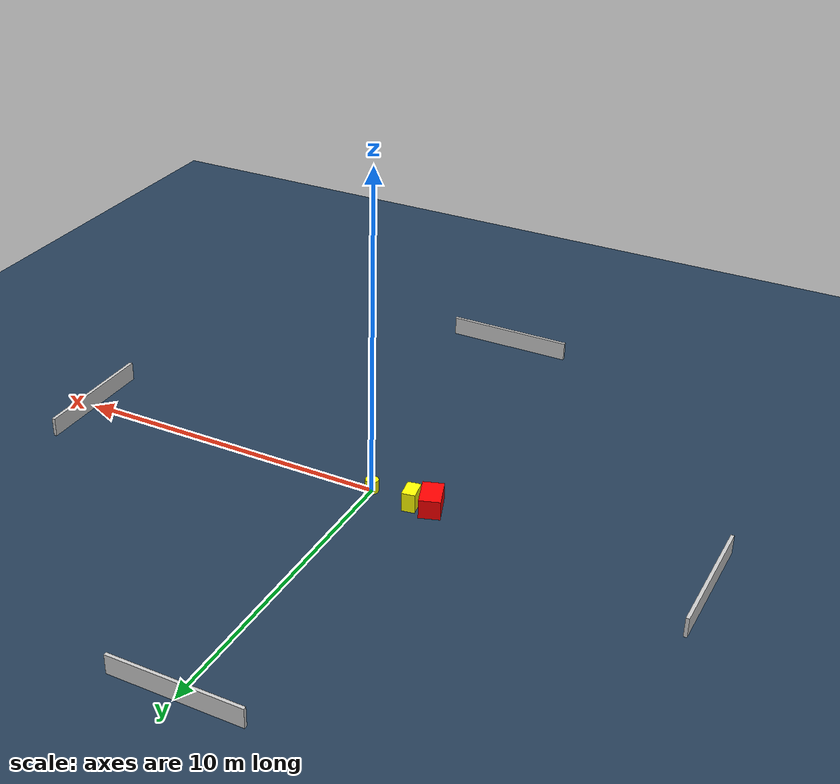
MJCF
<?xml version="1.0" ?>
<mujoco model="generated_environment">
  <option timestep="0.01" integrator="RK4" cone="elliptic"/>
  <default>
    <geom density="1"/>
  </default>
  <asset>
    <texture builtin="gradient" height="3072" name="skybox" rgb1="0.3 0.5 0.7" rgb2="0 0 0" type="skybox" width="512"/>
    <texture builtin="checker" height="300" name="groundplane" rgb1="0.2 0.3 0.4" rgb2="0.1 0.2 0.3" type="2d" width="300"/>
    <material name="groundplane" reflectance="0.2" texrepeat="5 5" texture="groundplane"/>
  </asset>
  <worldbody>
    <light dir="0 0 -1" directional="true" pos="0 0 1.5"/>
    <geom condim="3" friction="0.5 0.005 0.001" material="groundplane" name="floor" pos="0 0 0" size="0 0 0.05" type="plane"/>
    <body name="walls">
      <geom name="wall_1" condim="4" pos="-10.0 0.0 0.3" rgba="0.800000011920929 0.800000011920929 0.800000011920929 1.0" size="0.05 2.0 0.3" type="box"/>
      <geom name="wall_2" condim="4" pos="10.0 0.0 0.3" rgba="0.800000011920929 0.800000011920929 0.800000011920929 1.0" size="0.05 2.0 0.3" type="box"/>
      <geom name="wall_3" condim="4" pos="0.0 -10.0 0.3" rgba="0.800000011920929 0.800000011920929 0.800000011920929 1.0" size="2.0 0.05 0.3" type="box"/>
      <geom name="wall_4" condim="4" pos="0.0 10.0 0.3" rgba="0.800000011920929 0.800000011920929 0.800000011920929 1.0" size="2.0 0.05 0.3" type="box"/>
    </body>
    <body name="robot">
      <joint name="joint_x" type="slide" pos="0 0 0" axis="1 0 0"/>
      <joint name="joint_y" type="slide" pos="0 0 0" axis="0 1 0"/>
      <geom name="robot" type="cylinder" pos="0.0 0.0 0.2" size="0.2 0.2 0.0" mass="5.0" friction="1.0 0.005 0.0001" condim="4" rgba="1.0 1.0 0.0 1.0"/>
    </body>
    <body name="obstacle_1_movable">
      <geom name="obstacle_1_movable" condim="4" pos="-1.3493556909132027 0.1520142449445269 0.3" euler="0 0 189.71182546178844" friction="0.0 0.005 0.001" rgba="1.0 1.0 0.0 1.0" size="0.20371708301012156 0.31579175080033406 0.3" type="box" mass="0.1"/>
      <joint type="free"/>
    </body>
    <body name="obstacle_2_static">
      <geom name="obstacle_2_static" condim="4" pos="-1.9261271496450603 0.026922407456667345 0.3" euler="0 0 19.04045332306528" friction="0.0 0.005 0.001" rgba="1.0 0.0 0.0 1.0" size="0.3192692191130305 0.48693553724197175 0.3" type="box"/>
    </body>
  </worldbody>
  <actuator>
    <motor name="actuator_x" joint="joint_x" gear="1" ctrlrange="-1 1"/>
    <motor name="actuator_y" joint="joint_y" gear="1" ctrlrange="-1 1"/>
  </actuator>
</mujoco>
